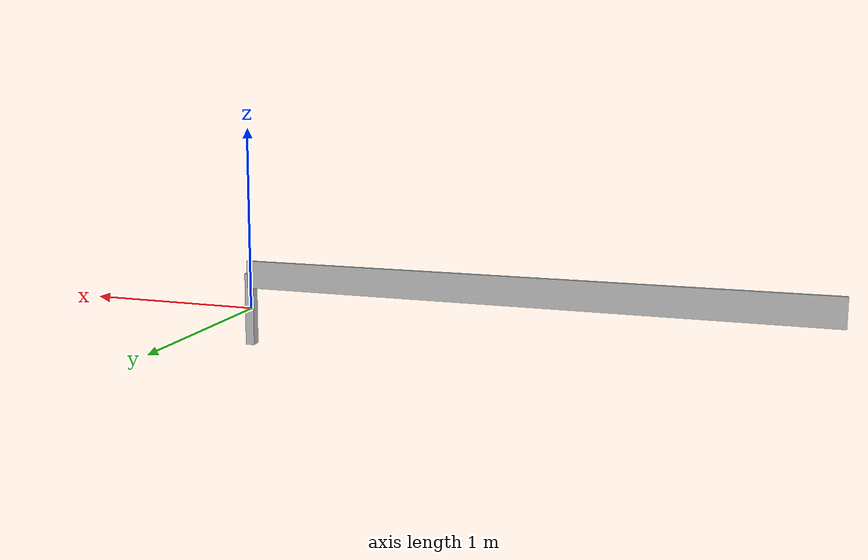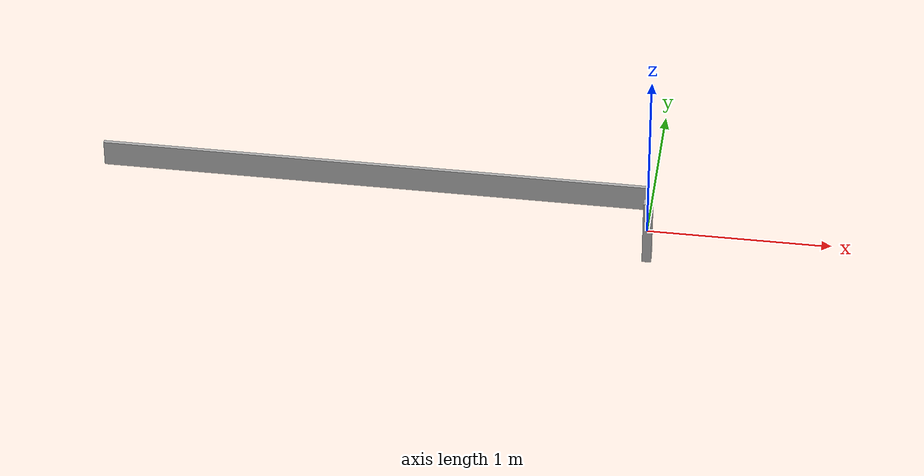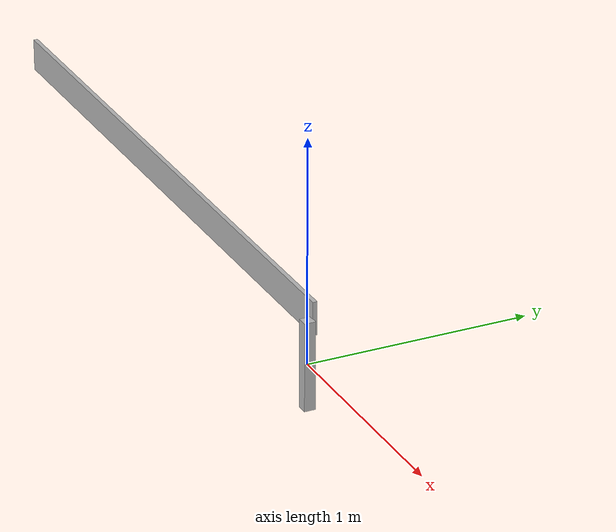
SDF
<?xml version="1.0"?>
<sdf version="1.5">

      <model name="blocking_bar">

      <link name="blocking_bar_bottom">
    	<pose>0 0 0 0 0 0</pose>
    	<collision name="blocking_bar_bottom_collision">
          <geometry>
            <box>
              <size>0.05 0.05 0.4</size>
            </box>
          </geometry>
    	</collision>
    	<visual name="blocking_bar_bottom_visual">
          <geometry>
            <box>
              <size>0.05 0.05 0.4</size>
            </box>
          </geometry>
    	</visual>
      </link>
      <link name="blocking_bar_top">
    	<pose>-1.5 0.0334 0.2 0 0 0</pose>
    	<collision name="blocking_bar_top_collision">
          <geometry>
            <box>
              <size>3.0 0.02 0.15</size>
            </box>
          </geometry>
    	</collision>
    	<visual name="blocking_bar_top_visual">
          <geometry>
            <box>
              <size>3.0 0.02 0.15</size>
            </box>
          </geometry>
          <material>
            <script>
              <name>blocking</name>
              <uri>model://blocking_bar/materials/blocking.material</uri>
            </script>
          </material>
    	</visual>
      </link>
      <joint name="blocking_bar_fixed" type="fixed">
    	<pose>0 0 0.05 0 0 0</pose>
    	<parent>world</parent>
    	<child>blocking_bar_bottom</child>
    	<axis>
          <xyz>0 0 0</xyz>
    	</axis>
      </joint>
      <joint name="blocking_bar_joint" type="revolute">
    	<parent>blocking_bar_bottom</parent>
    	<child>blocking_bar_top</child>
    	<pose>1.5 0 0 0 0 0</pose>
    	<axis>
          <xyz>0 1 0</xyz>
          <limit>
            <lower>0</lower>
            <upper>1.57</upper>
          </limit>
    	</axis>
      </joint>
      <plugin name="blockingbar" filename="/home/rosuser/catkin_ws/src/deu_car/build/libblocking.so"/>
    </model>

</sdf>
